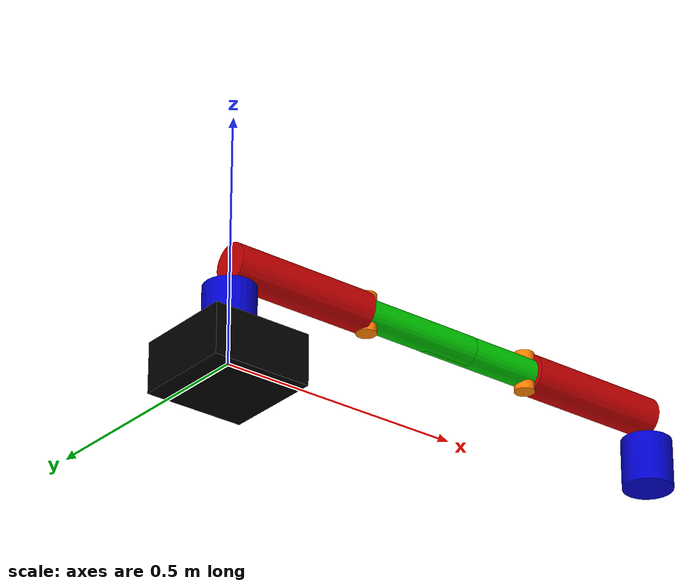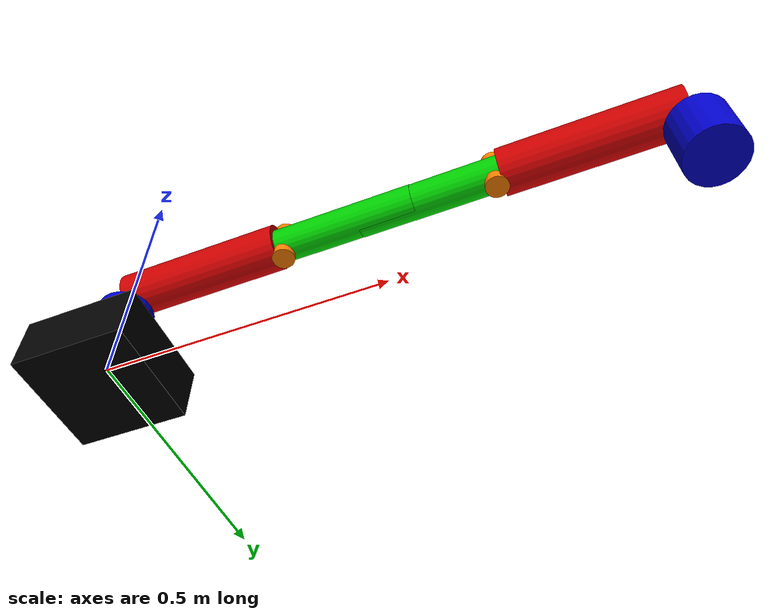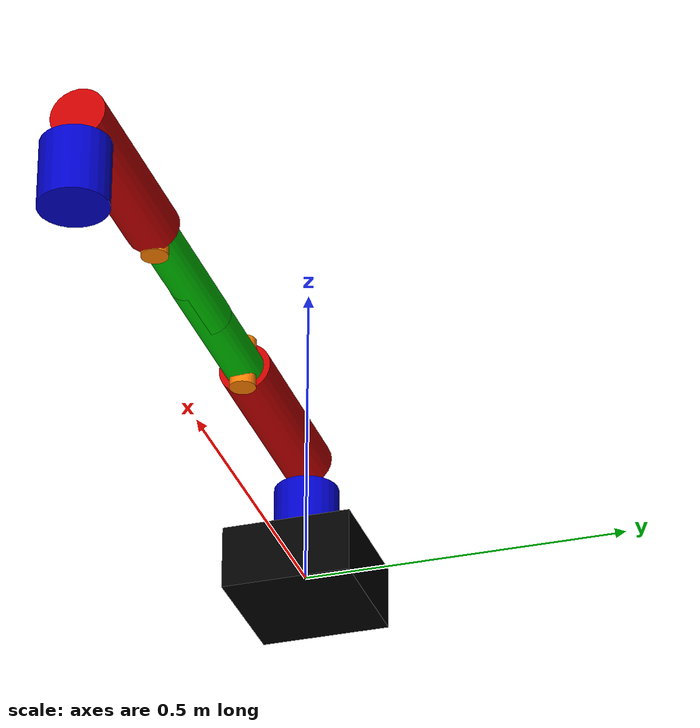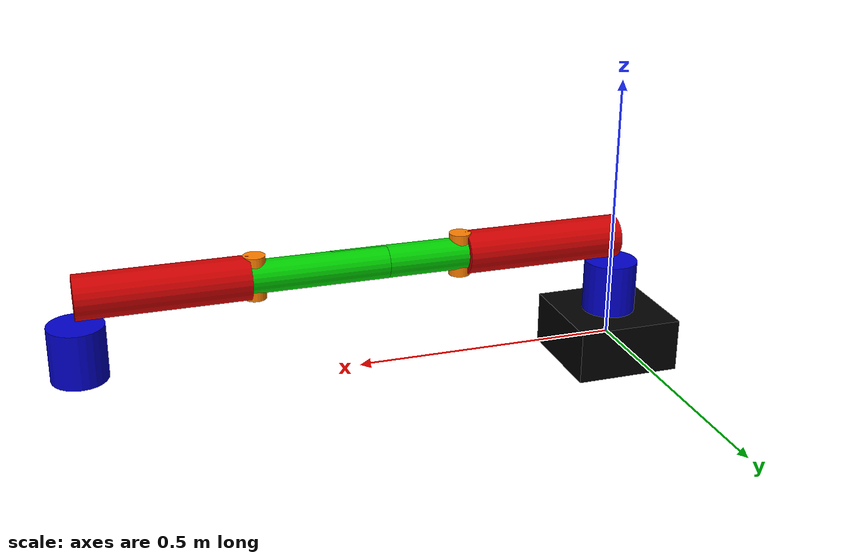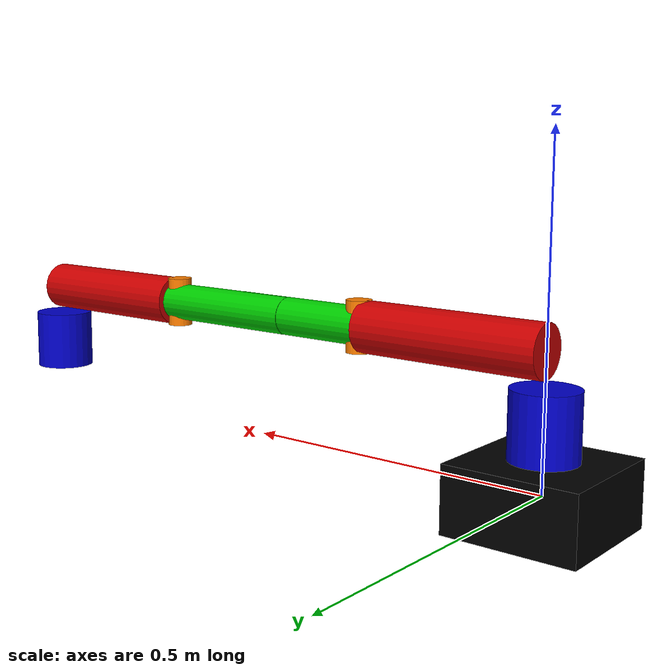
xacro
<?xml version="1.0"?>
<robot xmlns:xacro="http://www.ros.org/wiki/xacro" name="robot_arm">

  <!-- Define colors for the robot -->
  <material name="blue">
    <color rgba="0.0 0.0 0.8 1.0"/>
  </material>

  <material name="red">
    <color rgba="0.8 0.0 0.0 1.0"/>
  </material>

  <material name="green">
    <color rgba="0.0 0.8 0.0 1.0"/>
  </material>

  <material name="white">
    <color rgba="1.0 1.0 1.0 1.0"/>
  </material>

  <material name="black">
    <color rgba="0.0 0.0 0.0 1.0"/>
  </material>

  <material name="orange">
    <color rgba="1.0 0.5 0.0 1.0"/>
  </material>

  <!-- Base Link -->
  <link name="base_link">
    <visual>
      <geometry>
        <box size="0.2 0.2 0.1"/>
      </geometry>
      <material name="black"/>
    </visual>
    <collision>
      <geometry>
        <box size="0.2 0.2 0.1"/>
      </geometry>
    </collision>
    <inertial>
      <mass value="1.0"/>
      <inertia ixx="0.01" ixy="0.0" ixz="0.0" iyy="0.01" iyz="0.0" izz="0.01"/>
    </inertial>
  </link>

  <!-- FIRST ARM -->
  <!-- Joint 1: Base to Shoulder -->
  <joint name="joint1" type="revolute">
    <parent link="base_link"/>
    <child link="shoulder_link"/>
    <origin xyz="0 0 0.1" rpy="0 0 0"/>
    <axis xyz="0 0 1"/>
    <limit lower="-3.14" upper="3.14" effort="100" velocity="1.0"/>
  </joint>

  <!-- Shoulder Link -->
  <link name="shoulder_link">
    <visual>
      <geometry>
        <cylinder radius="0.05" length="0.1"/>
      </geometry>
      <material name="blue"/>
    </visual>
    <collision>
      <geometry>
        <cylinder radius="0.05" length="0.1"/>
      </geometry>
    </collision>
    <inertial>
      <mass value="0.5"/>
      <inertia ixx="0.01" ixy="0.0" ixz="0.0" iyy="0.01" iyz="0.0" izz="0.01"/>
    </inertial>
  </link>

  <!-- Joint 2: Shoulder to Upper Arm -->
  <joint name="joint2" type="revolute">
    <parent link="shoulder_link"/>
    <child link="upper_arm_link"/>
    <origin xyz="0 0 0.1" rpy="0 0 0"/>
    <axis xyz="0 1 0"/>
    <limit lower="-1.57" upper="1.57" effort="100" velocity="1.0"/>
  </joint>

  <!-- Upper Arm Link -->
  <link name="upper_arm_link">
    <visual>
      <origin xyz="0.15 0 0" rpy="0 1.57 0"/>
      <geometry>
        <cylinder radius="0.04" length="0.3"/>
      </geometry>
      <material name="red"/>
    </visual>
    <collision>
      <origin xyz="0.15 0 0" rpy="0 1.57 0"/>
      <geometry>
        <cylinder radius="0.04" length="0.3"/>
      </geometry>
    </collision>
    <inertial>
      <mass value="0.5"/>
      <inertia ixx="0.01" ixy="0.0" ixz="0.0" iyy="0.01" iyz="0.0" izz="0.01"/>
    </inertial>
  </link>

  <!-- Joint 3: Upper Arm to Forearm -->
  <joint name="joint3" type="revolute">
    <parent link="upper_arm_link"/>
    <child link="forearm_link"/>
    <origin xyz="0.3 0 0" rpy="0 0 0"/>
    <axis xyz="0 1 0"/>
    <limit lower="-2.0" upper="2.0" effort="100" velocity="1.0"/>
  </joint>

  <!-- Forearm Link -->
  <link name="forearm_link">
    <visual>
      <origin xyz="0.125 0 0" rpy="0 1.57 0"/>
      <geometry>
        <cylinder radius="0.03" length="0.25"/>
      </geometry>
      <material name="green"/>
    </visual>
    <collision>
      <origin xyz="0.125 0 0" rpy="0 1.57 0"/>
      <geometry>
        <cylinder radius="0.03" length="0.25"/>
      </geometry>
    </collision>
    <inertial>
      <mass value="0.4"/>
      <inertia ixx="0.01" ixy="0.0" ixz="0.0" iyy="0.01" iyz="0.0" izz="0.01"/>
    </inertial>
  </link>

  <!-- Joint 4: Forearm to Wrist Roll -->
  <joint name="joint4" type="revolute">
    <parent link="forearm_link"/>
    <child link="wrist_roll_link"/>
    <origin xyz="0.25 0 0" rpy="0 0 0"/>
    <axis xyz="1 0 0"/>
    <limit lower="-1.57" upper="1.57" effort="50" velocity="1.0"/>
  </joint>

  <!-- Wrist Roll Link -->
  <link name="wrist_roll_link">
    <visual>
      <origin xyz="0.05 0 0" rpy="0 1.57 0"/>
      <geometry>
        <cylinder radius="0.02" length="0.1"/>
      </geometry>
      <material name="white"/>
    </visual>
    <collision>
      <origin xyz="0.05 0 0" rpy="0 1.57 0"/>
      <geometry>
        <cylinder radius="0.02" length="0.1"/>
      </geometry>
    </collision>
    <inertial>
      <mass value="0.2"/>
      <inertia ixx="0.01" ixy="0.0" ixz="0.0" iyy="0.01" iyz="0.0" izz="0.01"/>
    </inertial>
  </link>

  <!-- Joint 5: Wrist Roll to Wrist Pitch (NEW JOINT) -->
  <joint name="joint5" type="revolute">
    <parent link="wrist_roll_link"/>
    <child link="wrist_pitch_link"/>
    <origin xyz="0.1 0 0" rpy="0 0 0"/>
    <axis xyz="0 1 0"/>
    <limit lower="-1.57" upper="1.57" effort="25" velocity="1.5"/>
  </joint>

  <!-- Wrist Pitch Link (NEW LINK) -->
  <link name="wrist_pitch_link">
    <visual>
      <origin xyz="0.04 0 0" rpy="0 0 0"/>
      <geometry>
        <cylinder radius="0.02" length="0.08"/>
      </geometry>
      <material name="orange"/>
    </visual>
    <collision>
      <origin xyz="0.04 0 0" rpy="0 0 0"/>
      <geometry>
        <cylinder radius="0.02" length="0.08"/>
      </geometry>
    </collision>
    <inertial>
      <mass value="0.15"/>
      <inertia ixx="0.001" ixy="0.0" ixz="0.0" iyy="0.001" iyz="0.0" izz="0.001"/>
    </inertial>
  </link>

  <!-- Joint 6: Wrist Pitch to Hand (previously joint5) -->
  <joint name="joint6" type="revolute">
    <parent link="wrist_pitch_link"/>
    <child link="hand_link"/>
    <origin xyz="0.08 0 0" rpy="0 0 0"/>
    <axis xyz="0 0 1"/>
    <limit lower="-3.14" upper="3.14" effort="25" velocity="1.5"/>
  </joint>

  <!-- Hand Link -->
  <link name="hand_link">
    <visual>
      <origin xyz="0.04 0 0" rpy="0 0 0"/>
      <geometry>
        <box size="0.08 0.05 0.02"/>
      </geometry>
      <material name="blue"/>
    </visual>
    <collision>
      <origin xyz="0.04 0 0" rpy="0 0 0"/>
      <geometry>
        <box size="0.08 0.05 0.02"/>
      </geometry>
    </collision>
    <inertial>
      <mass value="0.2"/>
      <inertia ixx="0.001" ixy="0.0" ixz="0.0" iyy="0.001" iyz="0.0" izz="0.001"/>
    </inertial>
  </link>

  <!-- Gripper Joint 1 -->
  <joint name="finger1_joint" type="prismatic">
    <parent link="hand_link"/>
    <child link="finger1_link"/>
    <origin xyz="0.08 0.025 0" rpy="0 0 0"/>
    <axis xyz="0 1 0"/>
    <limit lower="0" upper="0.04" effort="10" velocity="0.5"/>
  </joint>

  <!-- Finger 1 Link -->
  <link name="finger1_link">
    <visual>
      <origin xyz="0.03 0 0" rpy="0 0 0"/>
      <geometry>
        <box size="0.06 0.01 0.01"/>
      </geometry>
      <material name="red"/>
    </visual>
    <collision>
      <origin xyz="0.03 0 0" rpy="0 0 0"/>
      <geometry>
        <box size="0.06 0.01 0.01"/>
      </geometry>
    </collision>
    <inertial>
      <mass value="0.05"/>
      <inertia ixx="0.001" ixy="0.0" ixz="0.0" iyy="0.001" iyz="0.0" izz="0.001"/>
    </inertial>
  </link>

  <!-- Gripper Joint 2 -->
  <joint name="finger2_joint" type="prismatic">
    <parent link="hand_link"/>
    <child link="finger2_link"/>
    <origin xyz="0.08 -0.025 0" rpy="0 0 0"/>
    <axis xyz="0 -1 0"/>
    <limit lower="0" upper="0.04" effort="10" velocity="0.5"/>
    <mimic joint="finger1_joint" multiplier="1" offset="0"/>
  </joint>

  <!-- Finger 2 Link -->
  <link name="finger2_link">
    <visual>
      <origin xyz="0.03 0 0" rpy="0 0 0"/>
      <geometry>
        <box size="0.06 0.01 0.01"/>
      </geometry>
      <material name="red"/>
    </visual>
    <collision>
      <origin xyz="0.03 0 0" rpy="0 0 0"/>
      <geometry>
        <box size="0.06 0.01 0.01"/>
      </geometry>
    </collision>
    <inertial>
      <mass value="0.05"/>
      <inertia ixx="0.001" ixy="0.0" ixz="0.0" iyy="0.001" iyz="0.0" izz="0.001"/>
    </inertial>
  </link>

  <!-- SECOND ARM -->
  <!-- Joint 1: Base to Shoulder -->
  <joint name="joint1_second_arm" type="revolute">
    <parent link="base_link"/>
    <child link="shoulder_link_second_arm"/>
    <origin xyz="1 0 0.1" rpy="0 0 3.14"/>
    <axis xyz="0 0 1"/>
    <limit lower="-3.14" upper="3.14" effort="100" velocity="1.0"/>
  </joint>

  <!-- Shoulder Link -->
  <link name="shoulder_link_second_arm">
    <visual>
      <geometry>
        <cylinder radius="0.05" length="0.1"/>
      </geometry>
      <material name="blue"/>
    </visual>
    <collision>
      <geometry>
        <cylinder radius="0.05" length="0.1"/>
      </geometry>
    </collision>
    <inertial>
      <mass value="0.5"/>
      <inertia ixx="0.01" ixy="0.0" ixz="0.0" iyy="0.01" iyz="0.0" izz="0.01"/>
    </inertial>
  </link>

  <!-- Joint 2: Shoulder to Upper Arm -->
  <joint name="joint2_second_arm" type="revolute">
    <parent link="shoulder_link_second_arm"/>
    <child link="upper_arm_link_second_arm"/>
    <origin xyz="0 0 0.1" rpy="0 0 0"/>
    <axis xyz="0 1 0"/>
    <limit lower="-1.57" upper="1.57" effort="100" velocity="1.0"/>
  </joint>

  <!-- Upper Arm Link -->
  <link name="upper_arm_link_second_arm">
    <visual>
      <origin xyz="0.15 0 0" rpy="0 1.57 0"/>
      <geometry>
        <cylinder radius="0.04" length="0.3"/>
      </geometry>
      <material name="red"/>
    </visual>
    <collision>
      <origin xyz="0.15 0 0" rpy="0 1.57 0"/>
      <geometry>
        <cylinder radius="0.04" length="0.3"/>
      </geometry>
    </collision>
    <inertial>
      <mass value="0.5"/>
      <inertia ixx="0.01" ixy="0.0" ixz="0.0" iyy="0.01" iyz="0.0" izz="0.01"/>
    </inertial>
  </link>

  <!-- Joint 3: Upper Arm to Forearm -->
  <joint name="joint3_second_arm" type="revolute">
    <parent link="upper_arm_link_second_arm"/>
    <child link="forearm_link_second_arm"/>
    <origin xyz="0.3 0 0" rpy="0 0 0"/>
    <axis xyz="0 1 0"/>
    <limit lower="-2.0" upper="2.0" effort="100" velocity="1.0"/>
  </joint>

  <!-- Forearm Link -->
  <link name="forearm_link_second_arm">
    <visual>
      <origin xyz="0.125 0 0" rpy="0 1.57 0"/>
      <geometry>
        <cylinder radius="0.03" length="0.25"/>
      </geometry>
      <material name="green"/>
    </visual>
    <collision>
      <origin xyz="0.125 0 0" rpy="0 1.57 0"/>
      <geometry>
        <cylinder radius="0.03" length="0.25"/>
      </geometry>
    </collision>
    <inertial>
      <mass value="0.4"/>
      <inertia ixx="0.01" ixy="0.0" ixz="0.0" iyy="0.01" iyz="0.0" izz="0.01"/>
    </inertial>
  </link>

  <!-- Joint 4: Forearm to Wrist Roll -->
  <joint name="joint4_second_arm" type="revolute">
    <parent link="forearm_link_second_arm"/>
    <child link="wrist_roll_link_second_arm"/>
    <origin xyz="0.25 0 0" rpy="0 0 0"/>
    <axis xyz="1 0 0"/>
    <limit lower="-1.57" upper="1.57" effort="50" velocity="1.0"/>
  </joint>

  <!-- Wrist Roll Link -->
  <link name="wrist_roll_link_second_arm">
    <visual>
      <origin xyz="0.05 0 0" rpy="0 1.57 0"/>
      <geometry>
        <cylinder radius="0.02" length="0.1"/>
      </geometry>
      <material name="white"/>
    </visual>
    <collision>
      <origin xyz="0.05 0 0" rpy="0 1.57 0"/>
      <geometry>
        <cylinder radius="0.02" length="0.1"/>
      </geometry>
    </collision>
    <inertial>
      <mass value="0.2"/>
      <inertia ixx="0.01" ixy="0.0" ixz="0.0" iyy="0.01" iyz="0.0" izz="0.01"/>
    </inertial>
  </link>

  <!-- Joint 5: Wrist Roll to Wrist Pitch (NEW JOINT) -->
  <joint name="joint5_second_arm" type="revolute">
    <parent link="wrist_roll_link_second_arm"/>
    <child link="wrist_pitch_link_second_arm"/>
    <origin xyz="0.1 0 0" rpy="0 0 0"/>
    <axis xyz="0 1 0"/>
    <limit lower="-1.57" upper="1.57" effort="25" velocity="1.5"/>
  </joint>

  <!-- Wrist Pitch Link (NEW LINK) -->
  <link name="wrist_pitch_link_second_arm">
    <visual>
      <origin xyz="0.04 0 0" rpy="0 0 0"/>
      <geometry>
        <cylinder radius="0.02" length="0.08"/>
      </geometry>
      <material name="orange"/>
    </visual>
    <collision>
      <origin xyz="0.04 0 0" rpy="0 0 0"/>
      <geometry>
        <cylinder radius="0.02" length="0.08"/>
      </geometry>
    </collision>
    <inertial>
      <mass value="0.15"/>
      <inertia ixx="0.001" ixy="0.0" ixz="0.0" iyy="0.001" iyz="0.0" izz="0.001"/>
    </inertial>
  </link>

  <!-- Joint 6: Wrist Pitch to Hand (previously joint5) -->
  <joint name="joint6_second_arm" type="revolute">
    <parent link="wrist_pitch_link_second_arm"/>
    <child link="hand_link_second_arm"/>
    <origin xyz="0.08 0 0" rpy="0 0 0"/>
    <axis xyz="0 0 1"/>
    <limit lower="-3.14" upper="3.14" effort="25" velocity="1.5"/>
  </joint>

  <!-- Hand Link -->
  <link name="hand_link_second_arm">
    <visual>
      <origin xyz="0.04 0 0" rpy="0 0 0"/>
      <geometry>
        <box size="0.08 0.05 0.02"/>
      </geometry>
      <material name="blue"/>
    </visual>
    <collision>
      <origin xyz="0.04 0 0" rpy="0 0 0"/>
      <geometry>
        <box size="0.08 0.05 0.02"/>
      </geometry>
    </collision>
    <inertial>
      <mass value="0.2"/>
      <inertia ixx="0.001" ixy="0.0" ixz="0.0" iyy="0.001" iyz="0.0" izz="0.001"/>
    </inertial>
  </link>

  <!-- Gripper Joint 1 -->
  <joint name="finger1_joint_second_arm" type="prismatic">
    <parent link="hand_link_second_arm"/>
    <child link="finger1_link_second_arm"/>
    <origin xyz="0.08 0.025 0" rpy="0 0 0"/>
    <axis xyz="0 1 0"/>
    <limit lower="0" upper="0.04" effort="10" velocity="0.5"/>
  </joint>

  <!-- Finger 1 Link -->
  <link name="finger1_link_second_arm">
    <visual>
      <origin xyz="0.03 0 0" rpy="0 0 0"/>
      <geometry>
        <box size="0.06 0.01 0.01"/>
      </geometry>
      <material name="red"/>
    </visual>
    <collision>
      <origin xyz="0.03 0 0" rpy="0 0 0"/>
      <geometry>
        <box size="0.06 0.01 0.01"/>
      </geometry>
    </collision>
    <inertial>
      <mass value="0.05"/>
      <inertia ixx="0.001" ixy="0.0" ixz="0.0" iyy="0.001" iyz="0.0" izz="0.001"/>
    </inertial>
  </link>

  <!-- Gripper Joint 2 -->
  <joint name="finger2_joint_second_arm" type="prismatic">
    <parent link="hand_link_second_arm"/>
    <child link="finger2_link_second_arm"/>
    <origin xyz="0.08 -0.025 0" rpy="0 0 0"/>
    <axis xyz="0 -1 0"/>
    <limit lower="0" upper="0.04" effort="10" velocity="0.5"/>
    <mimic joint="finger1_joint_second_arm" multiplier="1" offset="0"/>
  </joint>

  <!-- Finger 2 Link -->
  <link name="finger2_link_second_arm">
    <visual>
      <origin xyz="0.03 0 0" rpy="0 0 0"/>
      <geometry>
        <box size="0.06 0.01 0.01"/>
      </geometry>
      <material name="red"/>
    </visual>
    <collision>
      <origin xyz="0.03 0 0" rpy="0 0 0"/>
      <geometry>
        <box size="0.06 0.01 0.01"/>
      </geometry>
    </collision>
    <inertial>
      <mass value="0.05"/>
      <inertia ixx="0.001" ixy="0.0" ixz="0.0" iyy="0.001" iyz="0.0" izz="0.001"/>
    </inertial>
  </link>
</robot>
